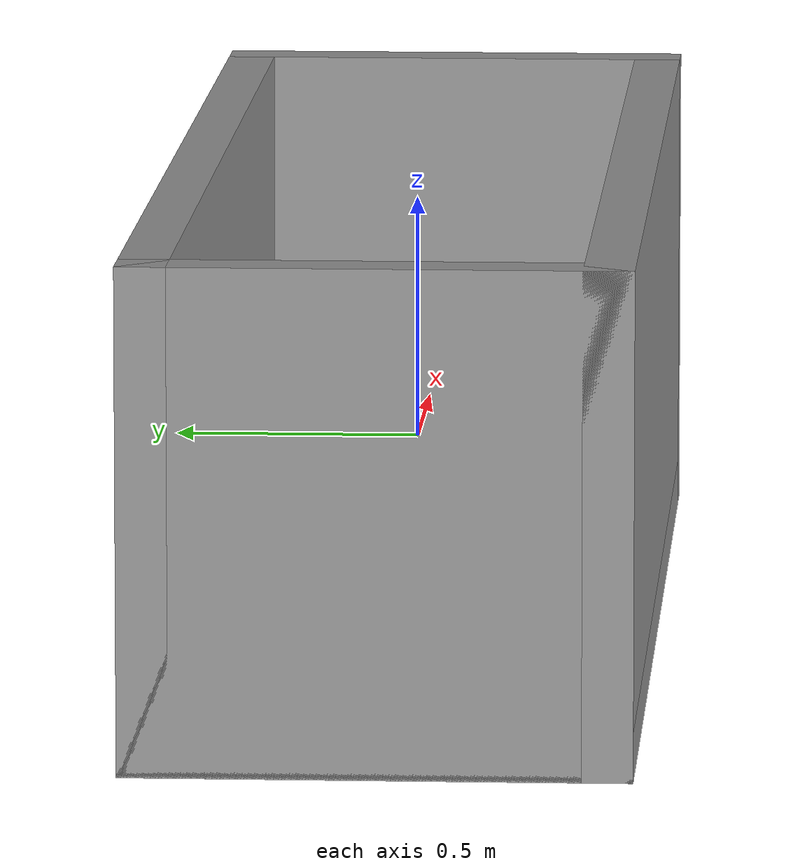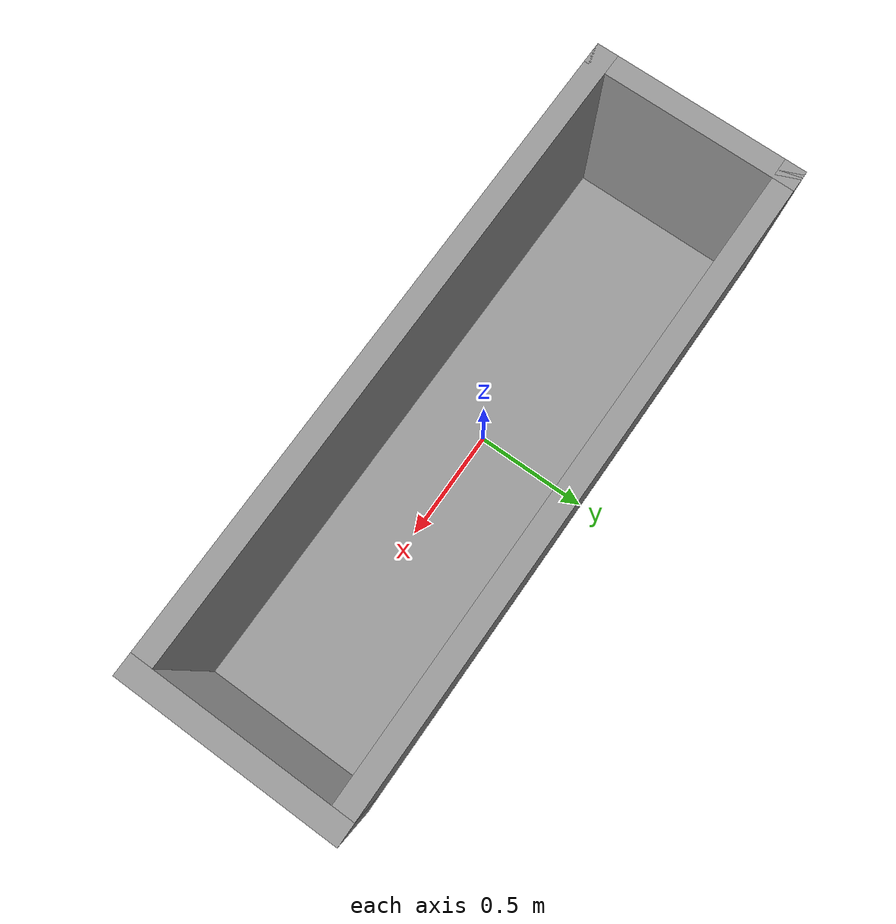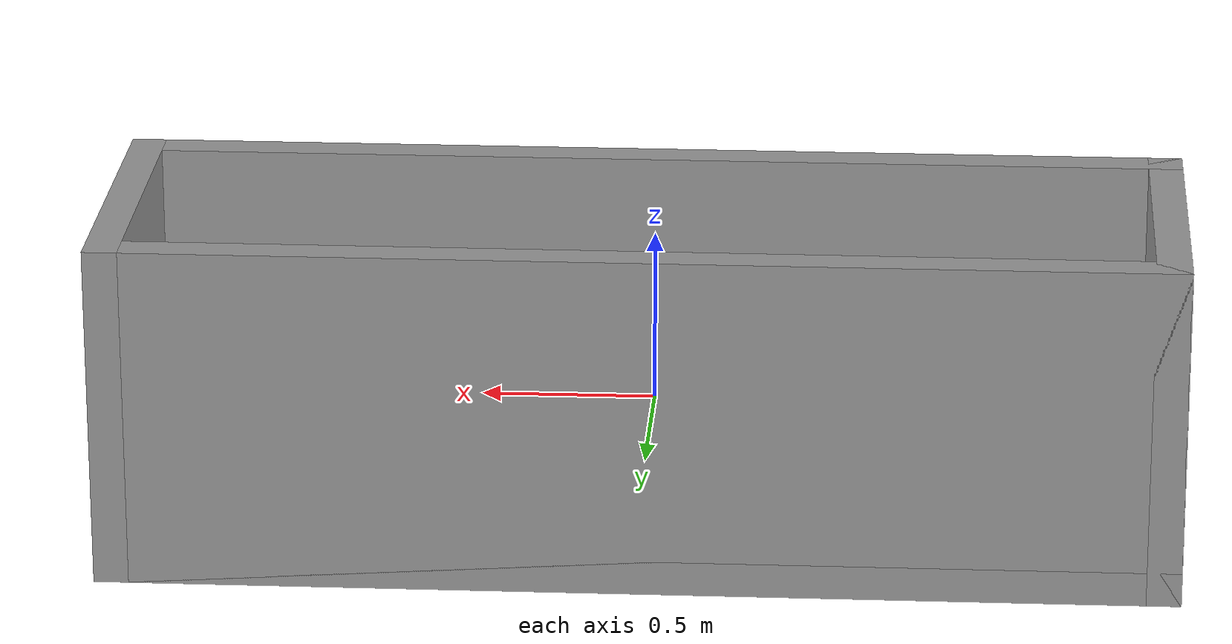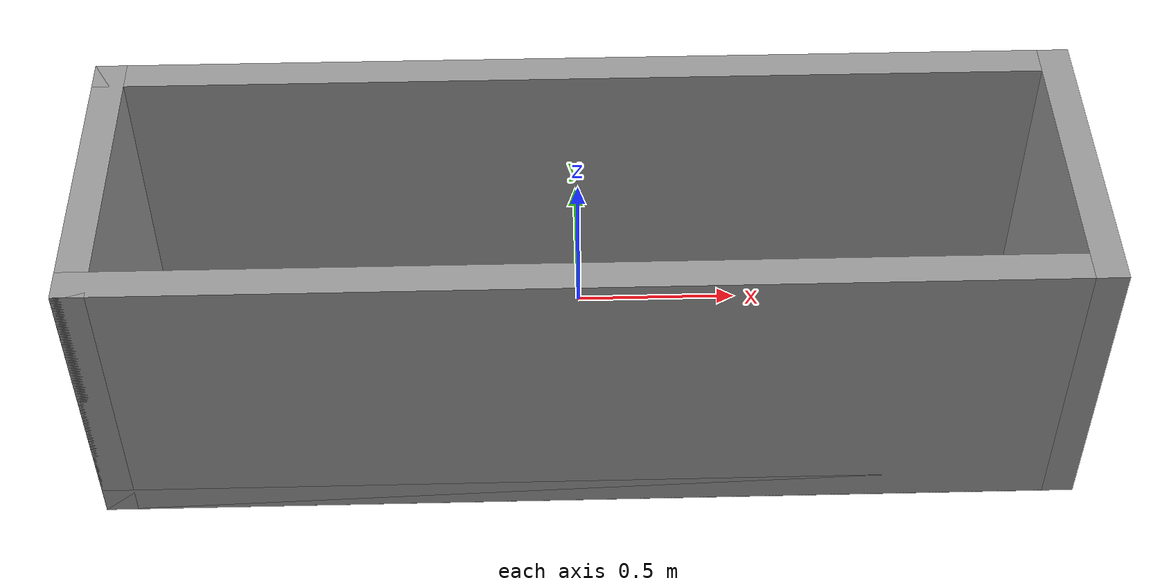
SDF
<?xml version='1.0'?>
<sdf version='1.6'>
  <model name='bathtub'>
    <link name='link_4'>
      <pose frame=''>-0.02 -0 -0.36 0 -0 0</pose>
      <inertial>
        <mass>1</mass>
        <inertia>
          <ixx>0.166667</ixx>
          <ixy>0</ixy>
          <ixz>0</ixz>
          <iyy>0.166667</iyy>
          <iyz>0</iyz>
          <izz>0.166667</izz>
        </inertia>
        <pose frame=''>0 0 0 0 -0 0</pose>
      </inertial>
      <gravity>1</gravity>
      <self_collide>0</self_collide>
      <kinematic>0</kinematic>
      <visual name='visual'>
        <pose frame=''>0 0 0 0 -0 0</pose>
        <geometry>
          <box>
            <size>3 1 0.1</size>
          </box>
        </geometry>
        <material>
          <lighting>1</lighting>
          <script>
            <uri>file://media/materials/scripts/gazebo.material</uri>
            <name>Gazebo/Grey</name>
          </script>
          <shader type='pixel'>
            <normal_map>__default__</normal_map>
          </shader>
          <ambient>0.3 0.3 0.3 1</ambient>
          <diffuse>0.7 0.7 0.7 1</diffuse>
          <specular>0.01 0.01 0.01 1</specular>
          <emissive>0 0 0 1</emissive>
        </material>
        <transparency>0</transparency>
        <cast_shadows>1</cast_shadows>
      </visual>
      <collision name='collision'>
        <laser_retro>0</laser_retro>
        <max_contacts>10</max_contacts>
        <pose frame=''>0 0 0 0 -0 0</pose>
        <geometry>
          <box>
            <size>3 1 0.1</size>
          </box>
        </geometry>
        <surface>
          <friction>
            <ode>
              <mu>1</mu>
              <mu2>1</mu2>
              <fdir1>0 0 0</fdir1>
              <slip1>0</slip1>
              <slip2>0</slip2>
            </ode>
            <torsional>
              <coefficient>1</coefficient>
              <patch_radius>0</patch_radius>
              <surface_radius>0</surface_radius>
              <use_patch_radius>1</use_patch_radius>
              <ode>
                <slip>0</slip>
              </ode>
            </torsional>
          </friction>
          <bounce>
            <restitution_coefficient>0</restitution_coefficient>
            <threshold>1e+06</threshold>
          </bounce>
          <contact>
            <collide_without_contact>0</collide_without_contact>
            <collide_without_contact_bitmask>1</collide_without_contact_bitmask>
            <collide_bitmask>1</collide_bitmask>
            <ode>
              <soft_cfm>0</soft_cfm>
              <soft_erp>0.2</soft_erp>
              <kp>1e+13</kp>
              <kd>1</kd>
              <max_vel>0.01</max_vel>
              <min_depth>0</min_depth>
            </ode>
            <bullet>
              <split_impulse>1</split_impulse>
              <split_impulse_penetration_threshold>-0.01</split_impulse_penetration_threshold>
              <soft_cfm>0</soft_cfm>
              <soft_erp>0.2</soft_erp>
              <kp>1e+13</kp>
              <kd>1</kd>
            </bullet>
          </contact>
        </surface>
      </collision>
    </link>
    <link name='link_5'>
      <pose frame=''>-0.02 -0.45 0.09 0 -0 0</pose>
      <inertial>
        <mass>1</mass>
        <inertia>
          <ixx>0.166667</ixx>
          <ixy>0</ixy>
          <ixz>0</ixz>
          <iyy>0.166667</iyy>
          <iyz>0</iyz>
          <izz>0.166667</izz>
        </inertia>
        <pose frame=''>0 0 0 0 -0 0</pose>
      </inertial>
      <gravity>1</gravity>
      <self_collide>0</self_collide>
      <kinematic>0</kinematic>
      <visual name='visual'>
        <pose frame=''>0 0 0 0 -0 0</pose>
        <geometry>
          <box>
            <size>3 0.1 1</size>
          </box>
        </geometry>
        <material>
          <lighting>1</lighting>
          <script>
            <uri>file://media/materials/scripts/gazebo.material</uri>
            <name>Gazebo/Grey</name>
          </script>
          <shader type='pixel'>
            <normal_map>__default__</normal_map>
          </shader>
          <ambient>0.3 0.3 0.3 1</ambient>
          <diffuse>0.7 0.7 0.7 1</diffuse>
          <specular>0.01 0.01 0.01 1</specular>
          <emissive>0 0 0 1</emissive>
        </material>
        <transparency>0</transparency>
        <cast_shadows>1</cast_shadows>
      </visual>
      <collision name='collision'>
        <laser_retro>0</laser_retro>
        <max_contacts>10</max_contacts>
        <pose frame=''>0 0 0 0 -0 0</pose>
        <geometry>
          <box>
            <size>3 0.1 1</size>
          </box>
        </geometry>
        <surface>
          <friction>
            <ode>
              <mu>1</mu>
              <mu2>1</mu2>
              <fdir1>0 0 0</fdir1>
              <slip1>0</slip1>
              <slip2>0</slip2>
            </ode>
            <torsional>
              <coefficient>1</coefficient>
              <patch_radius>0</patch_radius>
              <surface_radius>0</surface_radius>
              <use_patch_radius>1</use_patch_radius>
              <ode>
                <slip>0</slip>
              </ode>
            </torsional>
          </friction>
          <bounce>
            <restitution_coefficient>0</restitution_coefficient>
            <threshold>1e+06</threshold>
          </bounce>
          <contact>
            <collide_without_contact>0</collide_without_contact>
            <collide_without_contact_bitmask>1</collide_without_contact_bitmask>
            <collide_bitmask>1</collide_bitmask>
            <ode>
              <soft_cfm>0</soft_cfm>
              <soft_erp>0.2</soft_erp>
              <kp>1e+13</kp>
              <kd>1</kd>
              <max_vel>0.01</max_vel>
              <min_depth>0</min_depth>
            </ode>
            <bullet>
              <split_impulse>1</split_impulse>
              <split_impulse_penetration_threshold>-0.01</split_impulse_penetration_threshold>
              <soft_cfm>0</soft_cfm>
              <soft_erp>0.2</soft_erp>
              <kp>1e+13</kp>
              <kd>1</kd>
            </bullet>
          </contact>
        </surface>
      </collision>
    </link>
    <link name='link_5_clone'>
      <pose frame=''>-0.02 0.45 0.09 0 -0 0</pose>
      <inertial>
        <mass>1</mass>
        <inertia>
          <ixx>0.166667</ixx>
          <ixy>0</ixy>
          <ixz>0</ixz>
          <iyy>0.166667</iyy>
          <iyz>0</iyz>
          <izz>0.166667</izz>
        </inertia>
        <pose frame=''>0 0 0 0 -0 0</pose>
      </inertial>
      <self_collide>0</self_collide>
      <kinematic>0</kinematic>
      <visual name='visual'>
        <pose frame=''>0 0 0 0 -0 0</pose>
        <geometry>
          <box>
            <size>3 0.1 1</size>
          </box>
        </geometry>
        <material>
          <lighting>1</lighting>
          <script>
            <uri>file://media/materials/scripts/gazebo.material</uri>
            <name>Gazebo/Grey</name>
          </script>
          <shader type='pixel'>
            <normal_map>__default__</normal_map>
          </shader>
          <ambient>0.3 0.3 0.3 1</ambient>
          <diffuse>0.7 0.7 0.7 1</diffuse>
          <specular>0.01 0.01 0.01 1</specular>
          <emissive>0 0 0 1</emissive>
        </material>
        <transparency>0</transparency>
        <cast_shadows>1</cast_shadows>
      </visual>
      <collision name='collision'>
        <laser_retro>0</laser_retro>
        <max_contacts>10</max_contacts>
        <pose frame=''>0 0 0 0 -0 0</pose>
        <geometry>
          <box>
            <size>3 0.1 1</size>
          </box>
        </geometry>
        <surface>
          <friction>
            <ode>
              <mu>1</mu>
              <mu2>1</mu2>
              <fdir1>0 0 0</fdir1>
              <slip1>0</slip1>
              <slip2>0</slip2>
            </ode>
            <torsional>
              <coefficient>1</coefficient>
              <patch_radius>0</patch_radius>
              <surface_radius>0</surface_radius>
              <use_patch_radius>1</use_patch_radius>
              <ode>
                <slip>0</slip>
              </ode>
            </torsional>
          </friction>
          <bounce>
            <restitution_coefficient>0</restitution_coefficient>
            <threshold>1e+06</threshold>
          </bounce>
          <contact>
            <collide_without_contact>0</collide_without_contact>
            <collide_without_contact_bitmask>1</collide_without_contact_bitmask>
            <collide_bitmask>1</collide_bitmask>
            <ode>
              <soft_cfm>0</soft_cfm>
              <soft_erp>0.2</soft_erp>
              <kp>1e+13</kp>
              <kd>1</kd>
              <max_vel>0.01</max_vel>
              <min_depth>0</min_depth>
            </ode>
            <bullet>
              <split_impulse>1</split_impulse>
              <split_impulse_penetration_threshold>-0.01</split_impulse_penetration_threshold>
              <soft_cfm>0</soft_cfm>
              <soft_erp>0.2</soft_erp>
              <kp>1e+13</kp>
              <kd>1</kd>
            </bullet>
          </contact>
        </surface>
      </collision>
    </link>
    <link name='link_6'>
      <pose frame=''>1.53 -0 0.09 0 -0 0</pose>
      <inertial>
        <mass>1</mass>
        <inertia>
          <ixx>0.166667</ixx>
          <ixy>0</ixy>
          <ixz>0</ixz>
          <iyy>0.166667</iyy>
          <iyz>0</iyz>
          <izz>0.166667</izz>
        </inertia>
        <pose frame=''>0 0 0 0 -0 0</pose>
      </inertial>
      <gravity>1</gravity>
      <self_collide>0</self_collide>
      <kinematic>0</kinematic>
      <visual name='visual'>
        <pose frame=''>0 0 0 0 -0 0</pose>
        <geometry>
          <box>
            <size>0.1 1 1</size>
          </box>
        </geometry>
        <material>
          <lighting>1</lighting>
          <script>
            <uri>file://media/materials/scripts/gazebo.material</uri>
            <name>Gazebo/Grey</name>
          </script>
          <shader type='pixel'>
            <normal_map>__default__</normal_map>
          </shader>
          <ambient>0.3 0.3 0.3 1</ambient>
          <diffuse>0.7 0.7 0.7 1</diffuse>
          <specular>0.01 0.01 0.01 1</specular>
          <emissive>0 0 0 1</emissive>
        </material>
        <transparency>0</transparency>
        <cast_shadows>1</cast_shadows>
      </visual>
      <collision name='collision'>
        <laser_retro>0</laser_retro>
        <max_contacts>10</max_contacts>
        <pose frame=''>0 0 0 0 -0 0</pose>
        <geometry>
          <box>
            <size>0.1 1 1</size>
          </box>
        </geometry>
        <surface>
          <friction>
            <ode>
              <mu>1</mu>
              <mu2>1</mu2>
              <fdir1>0 0 0</fdir1>
              <slip1>0</slip1>
              <slip2>0</slip2>
            </ode>
            <torsional>
              <coefficient>1</coefficient>
              <patch_radius>0</patch_radius>
              <surface_radius>0</surface_radius>
              <use_patch_radius>1</use_patch_radius>
              <ode>
                <slip>0</slip>
              </ode>
            </torsional>
          </friction>
          <bounce>
            <restitution_coefficient>0</restitution_coefficient>
            <threshold>1e+06</threshold>
          </bounce>
          <contact>
            <collide_without_contact>0</collide_without_contact>
            <collide_without_contact_bitmask>1</collide_without_contact_bitmask>
            <collide_bitmask>1</collide_bitmask>
            <ode>
              <soft_cfm>0</soft_cfm>
              <soft_erp>0.2</soft_erp>
              <kp>1e+13</kp>
              <kd>1</kd>
              <max_vel>0.01</max_vel>
              <min_depth>0</min_depth>
            </ode>
            <bullet>
              <split_impulse>1</split_impulse>
              <split_impulse_penetration_threshold>-0.01</split_impulse_penetration_threshold>
              <soft_cfm>0</soft_cfm>
              <soft_erp>0.2</soft_erp>
              <kp>1e+13</kp>
              <kd>1</kd>
            </bullet>
          </contact>
        </surface>
      </collision>
    </link>
    <link name='link_6_clone'>
      <pose frame=''>-1.47 -0 0.09 0 -0 0</pose>
      <inertial>
        <mass>1</mass>
        <inertia>
          <ixx>0.166667</ixx>
          <ixy>0</ixy>
          <ixz>0</ixz>
          <iyy>0.166667</iyy>
          <iyz>0</iyz>
          <izz>0.166667</izz>
        </inertia>
        <pose frame=''>0 0 0 0 -0 0</pose>
      </inertial>
      <self_collide>0</self_collide>
      <kinematic>0</kinematic>
      <visual name='visual'>
        <pose frame=''>0 0 0 0 -0 0</pose>
        <geometry>
          <box>
            <size>0.1 1 1</size>
          </box>
        </geometry>
        <material>
          <lighting>1</lighting>
          <script>
            <uri>file://media/materials/scripts/gazebo.material</uri>
            <name>Gazebo/Grey</name>
          </script>
          <shader type='pixel'>
            <normal_map>__default__</normal_map>
          </shader>
          <ambient>0.3 0.3 0.3 1</ambient>
          <diffuse>0.7 0.7 0.7 1</diffuse>
          <specular>0.01 0.01 0.01 1</specular>
          <emissive>0 0 0 1</emissive>
        </material>
        <transparency>0</transparency>
        <cast_shadows>1</cast_shadows>
      </visual>
      <collision name='collision'>
        <laser_retro>0</laser_retro>
        <max_contacts>10</max_contacts>
        <pose frame=''>0 0 0 0 -0 0</pose>
        <geometry>
          <box>
            <size>0.1 1 1</size>
          </box>
        </geometry>
        <surface>
          <friction>
            <ode>
              <mu>1</mu>
              <mu2>1</mu2>
              <fdir1>0 0 0</fdir1>
              <slip1>0</slip1>
              <slip2>0</slip2>
            </ode>
            <torsional>
              <coefficient>1</coefficient>
              <patch_radius>0</patch_radius>
              <surface_radius>0</surface_radius>
              <use_patch_radius>1</use_patch_radius>
              <ode>
                <slip>0</slip>
              </ode>
            </torsional>
          </friction>
          <bounce>
            <restitution_coefficient>0</restitution_coefficient>
            <threshold>1e+06</threshold>
          </bounce>
          <contact>
            <collide_without_contact>0</collide_without_contact>
            <collide_without_contact_bitmask>1</collide_without_contact_bitmask>
            <collide_bitmask>1</collide_bitmask>
            <ode>
              <soft_cfm>0</soft_cfm>
              <soft_erp>0.2</soft_erp>
              <kp>1e+13</kp>
              <kd>1</kd>
              <max_vel>0.01</max_vel>
              <min_depth>0</min_depth>
            </ode>
            <bullet>
              <split_impulse>1</split_impulse>
              <split_impulse_penetration_threshold>-0.01</split_impulse_penetration_threshold>
              <soft_cfm>0</soft_cfm>
              <soft_erp>0.2</soft_erp>
              <kp>1e+13</kp>
              <kd>1</kd>
            </bullet>
          </contact>
        </surface>
      </collision>
    </link>
    <joint name='link_4_JOINT_0' type='revolute'>
      <parent>link_4</parent>
      <child>link_5_clone</child>
      <pose frame=''>0 0 0 0 -0 0</pose>
      <axis>
        <xyz>1 0 0</xyz>
        <use_parent_model_frame>0</use_parent_model_frame>
        <limit>
          <lower>-1.79769e+308</lower>
          <upper>1.79769e+308</upper>
          <effort>-1</effort>
          <velocity>-1</velocity>
        </limit>
        <dynamics>
          <spring_reference>0</spring_reference>
          <spring_stiffness>0</spring_stiffness>
          <damping>0</damping>
        </dynamics>
      </axis>
      <physics>
        <ode>
          <limit>
            <cfm>0</cfm>
            <erp>0.2</erp>
          </limit>
          <suspension>
            <cfm>0</cfm>
            <erp>0.2</erp>
          </suspension>
        </ode>
      </physics>
    </joint>
    <joint name='link_4_JOINT_1' type='revolute'>
      <parent>link_4</parent>
      <child>link_5_clone</child>
      <pose frame=''>0 0 0 0 -0 0</pose>
      <axis>
        <xyz>1 0 0</xyz>
        <use_parent_model_frame>0</use_parent_model_frame>
        <limit>
          <lower>-1.79769e+308</lower>
          <upper>1.79769e+308</upper>
          <effort>-1</effort>
          <velocity>-1</velocity>
        </limit>
        <dynamics>
          <spring_reference>0</spring_reference>
          <spring_stiffness>0</spring_stiffness>
          <damping>0</damping>
        </dynamics>
      </axis>
      <physics>
        <ode>
          <limit>
            <cfm>0</cfm>
            <erp>0.2</erp>
          </limit>
          <suspension>
            <cfm>0</cfm>
            <erp>0.2</erp>
          </suspension>
        </ode>
      </physics>
    </joint>
    <joint name='link_4_JOINT_2' type='revolute'>
      <parent>link_4</parent>
      <child>link_5</child>
      <pose frame=''>0 0 0 0 -0 0</pose>
      <axis>
        <xyz>1 0 0</xyz>
        <use_parent_model_frame>0</use_parent_model_frame>
        <limit>
          <lower>-1.79769e+308</lower>
          <upper>1.79769e+308</upper>
          <effort>-1</effort>
          <velocity>-1</velocity>
        </limit>
        <dynamics>
          <spring_reference>0</spring_reference>
          <spring_stiffness>0</spring_stiffness>
          <damping>0</damping>
        </dynamics>
      </axis>
      <physics>
        <ode>
          <limit>
            <cfm>0</cfm>
            <erp>0.2</erp>
          </limit>
          <suspension>
            <cfm>0</cfm>
            <erp>0.2</erp>
          </suspension>
        </ode>
      </physics>
    </joint>
    <joint name='link_4_JOINT_3' type='revolute'>
      <parent>link_4</parent>
      <child>link_6_clone</child>
      <pose frame=''>0 0 0 0 -0 0</pose>
      <axis>
        <xyz>1 0 0</xyz>
        <use_parent_model_frame>0</use_parent_model_frame>
        <limit>
          <lower>-1.79769e+308</lower>
          <upper>1.79769e+308</upper>
          <effort>-1</effort>
          <velocity>-1</velocity>
        </limit>
        <dynamics>
          <spring_reference>0</spring_reference>
          <spring_stiffness>0</spring_stiffness>
          <damping>0</damping>
        </dynamics>
      </axis>
      <physics>
        <ode>
          <limit>
            <cfm>0</cfm>
            <erp>0.2</erp>
          </limit>
          <suspension>
            <cfm>0</cfm>
            <erp>0.2</erp>
          </suspension>
        </ode>
      </physics>
    </joint>
    <joint name='link_4_JOINT_4' type='revolute'>
      <parent>link_4</parent>
      <child>link_6</child>
      <pose frame=''>0 0 0 0 -0 0</pose>
      <axis>
        <xyz>1 0 0</xyz>
        <use_parent_model_frame>0</use_parent_model_frame>
        <limit>
          <lower>-1.79769e+308</lower>
          <upper>1.79769e+308</upper>
          <effort>-1</effort>
          <velocity>-1</velocity>
        </limit>
        <dynamics>
          <spring_reference>0</spring_reference>
          <spring_stiffness>0</spring_stiffness>
          <damping>0</damping>
        </dynamics>
      </axis>
      <physics>
        <ode>
          <limit>
            <cfm>0</cfm>
            <erp>0.2</erp>
          </limit>
          <suspension>
            <cfm>0</cfm>
            <erp>0.2</erp>
          </suspension>
        </ode>
      </physics>
    </joint>
    <static>0</static>
    <allow_auto_disable>1</allow_auto_disable>
  </model>
</sdf>
